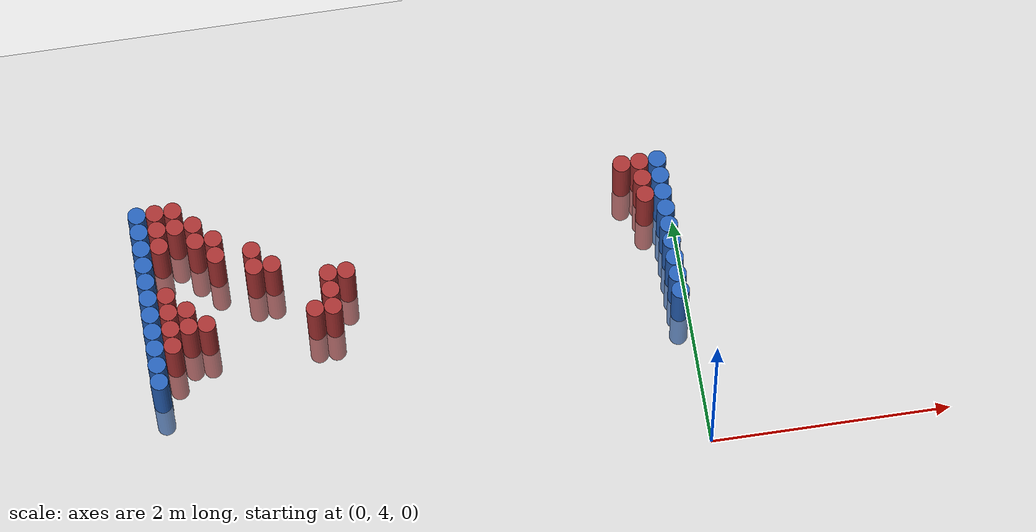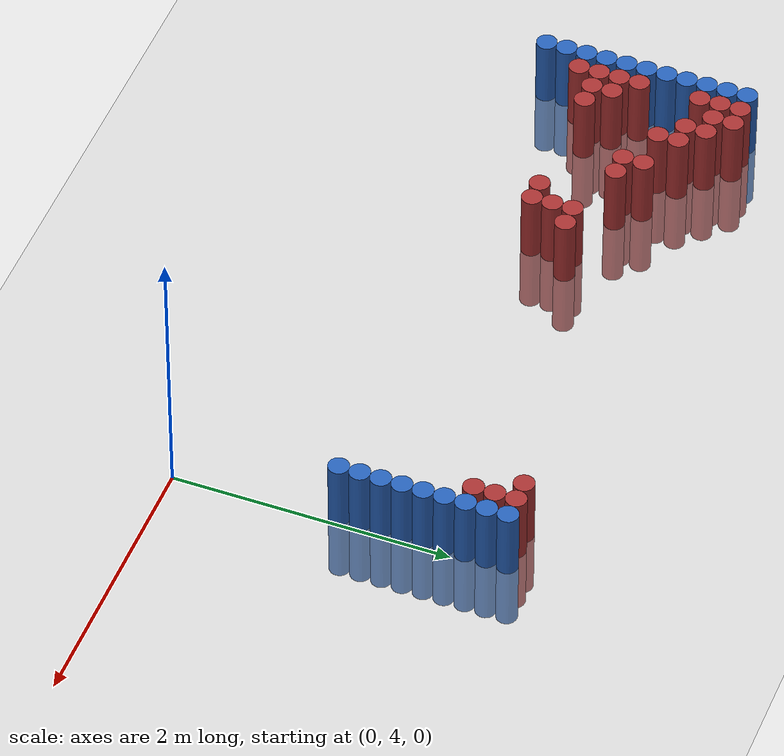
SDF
<sdf version="1.6">
 <world name="default">
  <model name="ground_plane">
   <static>1</static>
   <link name="link">
    <collision name="collision">
     <geometry><plane><normal>0 0 1</normal><size>100 100</size></plane></geometry>
     <surface><friction><ode><mu>100</mu><mu2>50</mu2></ode></friction></surface>
    </collision>
    <visual name="visual">
     <cast_shadows>0</cast_shadows>
     <geometry><plane><normal>0 0 1</normal><size>100 100</size></plane></geometry>
     <material>
      <script><uri>file://media/materials/scripts/gazebo.material</uri><name>Gazebo/Grey</name></script>
     </material>
    </visual>
   </link>
  </model>
  <model name="unit_cylinder_95">
   <static>1</static>
   <pose>-4.425000 5.025000 0.000000 0.000000 0.000000 0.000000</pose>
   <link name="link">
    <inertial>
     <mass>1</mass>
     <inertia><ixx>0.145833</ixx><ixy>0</ixy><ixz>0</ixz><iyy>0.145833</iyy><iyz>0</iyz><izz>0.125</izz></inertia>
    </inertial>
    <collision name="collision">
     <geometry><cylinder><radius>0.075000</radius><length>1</length></cylinder></geometry>
    </collision>
    <visual name="visual">
     <geometry><cylinder><radius>0.075000</radius><length>1</length></cylinder></geometry>
     <material>
      <ambient>0.152000 0.379000 0.720000 1</ambient>
      <diffuse>0.152000 0.379000 0.720000 1</diffuse>
     </material>
     <material>
      <script><name>Gazebo/Grey</name><uri>file://media/materials/scripts/gazebo.material</uri></script>
     </material>
    </visual>
   </link>
  </model>
  <model name="unit_cylinder_96">
   <static>1</static>
   <pose>-4.425000 5.175000 0.000000 0.000000 0.000000 0.000000</pose>
   <link name="link">
    <inertial>
     <mass>1</mass>
     <inertia><ixx>0.145833</ixx><ixy>0</ixy><ixz>0</ixz><iyy>0.145833</iyy><iyz>0</iyz><izz>0.125</izz></inertia>
    </inertial>
    <collision name="collision">
     <geometry><cylinder><radius>0.075000</radius><length>1</length></cylinder></geometry>
    </collision>
    <visual name="visual">
     <geometry><cylinder><radius>0.075000</radius><length>1</length></cylinder></geometry>
     <material>
      <ambient>0.152000 0.379000 0.720000 1</ambient>
      <diffuse>0.152000 0.379000 0.720000 1</diffuse>
     </material>
     <material>
      <script><name>Gazebo/Grey</name><uri>file://media/materials/scripts/gazebo.material</uri></script>
     </material>
    </visual>
   </link>
  </model>
  <model name="unit_cylinder_97">
   <static>1</static>
   <pose>-4.425000 5.325000 0.000000 0.000000 0.000000 0.000000</pose>
   <link name="link">
    <inertial>
     <mass>1</mass>
     <inertia><ixx>0.145833</ixx><ixy>0</ixy><ixz>0</ixz><iyy>0.145833</iyy><iyz>0</iyz><izz>0.125</izz></inertia>
    </inertial>
    <collision name="collision">
     <geometry><cylinder><radius>0.075000</radius><length>1</length></cylinder></geometry>
    </collision>
    <visual name="visual">
     <geometry><cylinder><radius>0.075000</radius><length>1</length></cylinder></geometry>
     <material>
      <ambient>0.152000 0.379000 0.720000 1</ambient>
      <diffuse>0.152000 0.379000 0.720000 1</diffuse>
     </material>
     <material>
      <script><name>Gazebo/Grey</name><uri>file://media/materials/scripts/gazebo.material</uri></script>
     </material>
    </visual>
   </link>
  </model>
  <model name="unit_cylinder_98">
   <static>1</static>
   <pose>-4.425000 5.475000 0.000000 0.000000 0.000000 0.000000</pose>
   <link name="link">
    <inertial>
     <mass>1</mass>
     <inertia><ixx>0.145833</ixx><ixy>0</ixy><ixz>0</ixz><iyy>0.145833</iyy><iyz>0</iyz><izz>0.125</izz></inertia>
    </inertial>
    <collision name="collision">
     <geometry><cylinder><radius>0.075000</radius><length>1</length></cylinder></geometry>
    </collision>
    <visual name="visual">
     <geometry><cylinder><radius>0.075000</radius><length>1</length></cylinder></geometry>
     <material>
      <ambient>0.152000 0.379000 0.720000 1</ambient>
      <diffuse>0.152000 0.379000 0.720000 1</diffuse>
     </material>
     <material>
      <script><name>Gazebo/Grey</name><uri>file://media/materials/scripts/gazebo.material</uri></script>
     </material>
    </visual>
   </link>
  </model>
  <model name="unit_cylinder_99">
   <static>1</static>
   <pose>-4.425000 5.625000 0.000000 0.000000 0.000000 0.000000</pose>
   <link name="link">
    <inertial>
     <mass>1</mass>
     <inertia><ixx>0.145833</ixx><ixy>0</ixy><ixz>0</ixz><iyy>0.145833</iyy><iyz>0</iyz><izz>0.125</izz></inertia>
    </inertial>
    <collision name="collision">
     <geometry><cylinder><radius>0.075000</radius><length>1</length></cylinder></geometry>
    </collision>
    <visual name="visual">
     <geometry><cylinder><radius>0.075000</radius><length>1</length></cylinder></geometry>
     <material>
      <ambient>0.152000 0.379000 0.720000 1</ambient>
      <diffuse>0.152000 0.379000 0.720000 1</diffuse>
     </material>
     <material>
      <script><name>Gazebo/Grey</name><uri>file://media/materials/scripts/gazebo.material</uri></script>
     </material>
    </visual>
   </link>
  </model>
  <model name="unit_cylinder_100">
   <static>1</static>
   <pose>-4.425000 5.775000 0.000000 0.000000 0.000000 0.000000</pose>
   <link name="link">
    <inertial>
     <mass>1</mass>
     <inertia><ixx>0.145833</ixx><ixy>0</ixy><ixz>0</ixz><iyy>0.145833</iyy><iyz>0</iyz><izz>0.125</izz></inertia>
    </inertial>
    <collision name="collision">
     <geometry><cylinder><radius>0.075000</radius><length>1</length></cylinder></geometry>
    </collision>
    <visual name="visual">
     <geometry><cylinder><radius>0.075000</radius><length>1</length></cylinder></geometry>
     <material>
      <ambient>0.152000 0.379000 0.720000 1</ambient>
      <diffuse>0.152000 0.379000 0.720000 1</diffuse>
     </material>
     <material>
      <script><name>Gazebo/Grey</name><uri>file://media/materials/scripts/gazebo.material</uri></script>
     </material>
    </visual>
   </link>
  </model>
  <model name="unit_cylinder_101">
   <static>1</static>
   <pose>-4.425000 5.925000 0.000000 0.000000 0.000000 0.000000</pose>
   <link name="link">
    <inertial>
     <mass>1</mass>
     <inertia><ixx>0.145833</ixx><ixy>0</ixy><ixz>0</ixz><iyy>0.145833</iyy><iyz>0</iyz><izz>0.125</izz></inertia>
    </inertial>
    <collision name="collision">
     <geometry><cylinder><radius>0.075000</radius><length>1</length></cylinder></geometry>
    </collision>
    <visual name="visual">
     <geometry><cylinder><radius>0.075000</radius><length>1</length></cylinder></geometry>
     <material>
      <ambient>0.152000 0.379000 0.720000 1</ambient>
      <diffuse>0.152000 0.379000 0.720000 1</diffuse>
     </material>
     <material>
      <script><name>Gazebo/Grey</name><uri>file://media/materials/scripts/gazebo.material</uri></script>
     </material>
    </visual>
   </link>
  </model>
  <model name="unit_cylinder_102">
   <static>1</static>
   <pose>-4.425000 6.075000 0.000000 0.000000 0.000000 0.000000</pose>
   <link name="link">
    <inertial>
     <mass>1</mass>
     <inertia><ixx>0.145833</ixx><ixy>0</ixy><ixz>0</ixz><iyy>0.145833</iyy><iyz>0</iyz><izz>0.125</izz></inertia>
    </inertial>
    <collision name="collision">
     <geometry><cylinder><radius>0.075000</radius><length>1</length></cylinder></geometry>
    </collision>
    <visual name="visual">
     <geometry><cylinder><radius>0.075000</radius><length>1</length></cylinder></geometry>
     <material>
      <ambient>0.152000 0.379000 0.720000 1</ambient>
      <diffuse>0.152000 0.379000 0.720000 1</diffuse>
     </material>
     <material>
      <script><name>Gazebo/Grey</name><uri>file://media/materials/scripts/gazebo.material</uri></script>
     </material>
    </visual>
   </link>
  </model>
  <model name="unit_cylinder_103">
   <static>1</static>
   <pose>-4.425000 6.225000 0.000000 0.000000 0.000000 0.000000</pose>
   <link name="link">
    <inertial>
     <mass>1</mass>
     <inertia><ixx>0.145833</ixx><ixy>0</ixy><ixz>0</ixz><iyy>0.145833</iyy><iyz>0</iyz><izz>0.125</izz></inertia>
    </inertial>
    <collision name="collision">
     <geometry><cylinder><radius>0.075000</radius><length>1</length></cylinder></geometry>
    </collision>
    <visual name="visual">
     <geometry><cylinder><radius>0.075000</radius><length>1</length></cylinder></geometry>
     <material>
      <ambient>0.152000 0.379000 0.720000 1</ambient>
      <diffuse>0.152000 0.379000 0.720000 1</diffuse>
     </material>
     <material>
      <script><name>Gazebo/Grey</name><uri>file://media/materials/scripts/gazebo.material</uri></script>
     </material>
    </visual>
   </link>
  </model>
  <model name="unit_cylinder_104">
   <static>1</static>
   <pose>-4.425000 6.375000 0.000000 0.000000 0.000000 0.000000</pose>
   <link name="link">
    <inertial>
     <mass>1</mass>
     <inertia><ixx>0.145833</ixx><ixy>0</ixy><ixz>0</ixz><iyy>0.145833</iyy><iyz>0</iyz><izz>0.125</izz></inertia>
    </inertial>
    <collision name="collision">
     <geometry><cylinder><radius>0.075000</radius><length>1</length></cylinder></geometry>
    </collision>
    <visual name="visual">
     <geometry><cylinder><radius>0.075000</radius><length>1</length></cylinder></geometry>
     <material>
      <ambient>0.152000 0.379000 0.720000 1</ambient>
      <diffuse>0.152000 0.379000 0.720000 1</diffuse>
     </material>
     <material>
      <script><name>Gazebo/Grey</name><uri>file://media/materials/scripts/gazebo.material</uri></script>
     </material>
    </visual>
   </link>
  </model>
  <model name="unit_cylinder_105">
   <static>1</static>
   <pose>-4.425000 6.525000 0.000000 0.000000 0.000000 0.000000</pose>
   <link name="link">
    <inertial>
     <mass>1</mass>
     <inertia><ixx>0.145833</ixx><ixy>0</ixy><ixz>0</ixz><iyy>0.145833</iyy><iyz>0</iyz><izz>0.125</izz></inertia>
    </inertial>
    <collision name="collision">
     <geometry><cylinder><radius>0.075000</radius><length>1</length></cylinder></geometry>
    </collision>
    <visual name="visual">
     <geometry><cylinder><radius>0.075000</radius><length>1</length></cylinder></geometry>
     <material>
      <ambient>0.152000 0.379000 0.720000 1</ambient>
      <diffuse>0.152000 0.379000 0.720000 1</diffuse>
     </material>
     <material>
      <script><name>Gazebo/Grey</name><uri>file://media/materials/scripts/gazebo.material</uri></script>
     </material>
    </visual>
   </link>
  </model>
  <model name="unit_cylinder_126">
   <static>1</static>
   <pose>-4.275000 5.325000 0.000000 0.000000 0.000000 0.000000</pose>
   <link name="link">
    <inertial>
     <mass>1</mass>
     <inertia><ixx>0.145833</ixx><ixy>0</ixy><ixz>0</ixz><iyy>0.145833</iyy><iyz>0</iyz><izz>0.125</izz></inertia>
    </inertial>
    <collision name="collision">
     <geometry><cylinder><radius>0.075000</radius><length>1</length></cylinder></geometry>
    </collision>
    <visual name="visual">
     <geometry><cylinder><radius>0.075000</radius><length>1</length></cylinder></geometry>
     <material>
      <ambient>0.648000 0.192000 0.192000 1</ambient>
      <diffuse>0.648000 0.192000 0.192000 1</diffuse>
     </material>
     <material>
      <script><name>Gazebo/Grey</name><uri>file://media/materials/scripts/gazebo.material</uri></script>
     </material>
    </visual>
   </link>
  </model>
  <model name="unit_cylinder_127">
   <static>1</static>
   <pose>-4.275000 5.475000 0.000000 0.000000 0.000000 0.000000</pose>
   <link name="link">
    <inertial>
     <mass>1</mass>
     <inertia><ixx>0.145833</ixx><ixy>0</ixy><ixz>0</ixz><iyy>0.145833</iyy><iyz>0</iyz><izz>0.125</izz></inertia>
    </inertial>
    <collision name="collision">
     <geometry><cylinder><radius>0.075000</radius><length>1</length></cylinder></geometry>
    </collision>
    <visual name="visual">
     <geometry><cylinder><radius>0.075000</radius><length>1</length></cylinder></geometry>
     <material>
      <ambient>0.648000 0.192000 0.192000 1</ambient>
      <diffuse>0.648000 0.192000 0.192000 1</diffuse>
     </material>
     <material>
      <script><name>Gazebo/Grey</name><uri>file://media/materials/scripts/gazebo.material</uri></script>
     </material>
    </visual>
   </link>
  </model>
  <model name="unit_cylinder_128">
   <static>1</static>
   <pose>-4.275000 5.625000 0.000000 0.000000 0.000000 0.000000</pose>
   <link name="link">
    <inertial>
     <mass>1</mass>
     <inertia><ixx>0.145833</ixx><ixy>0</ixy><ixz>0</ixz><iyy>0.145833</iyy><iyz>0</iyz><izz>0.125</izz></inertia>
    </inertial>
    <collision name="collision">
     <geometry><cylinder><radius>0.075000</radius><length>1</length></cylinder></geometry>
    </collision>
    <visual name="visual">
     <geometry><cylinder><radius>0.075000</radius><length>1</length></cylinder></geometry>
     <material>
      <ambient>0.648000 0.192000 0.192000 1</ambient>
      <diffuse>0.648000 0.192000 0.192000 1</diffuse>
     </material>
     <material>
      <script><name>Gazebo/Grey</name><uri>file://media/materials/scripts/gazebo.material</uri></script>
     </material>
    </visual>
   </link>
  </model>
  <model name="unit_cylinder_129">
   <static>1</static>
   <pose>-4.275000 5.775000 0.000000 0.000000 0.000000 0.000000</pose>
   <link name="link">
    <inertial>
     <mass>1</mass>
     <inertia><ixx>0.145833</ixx><ixy>0</ixy><ixz>0</ixz><iyy>0.145833</iyy><iyz>0</iyz><izz>0.125</izz></inertia>
    </inertial>
    <collision name="collision">
     <geometry><cylinder><radius>0.075000</radius><length>1</length></cylinder></geometry>
    </collision>
    <visual name="visual">
     <geometry><cylinder><radius>0.075000</radius><length>1</length></cylinder></geometry>
     <material>
      <ambient>0.648000 0.192000 0.192000 1</ambient>
      <diffuse>0.648000 0.192000 0.192000 1</diffuse>
     </material>
     <material>
      <script><name>Gazebo/Grey</name><uri>file://media/materials/scripts/gazebo.material</uri></script>
     </material>
    </visual>
   </link>
  </model>
  <model name="unit_cylinder_130">
   <static>1</static>
   <pose>-4.275000 6.225000 0.000000 0.000000 0.000000 0.000000</pose>
   <link name="link">
    <inertial>
     <mass>1</mass>
     <inertia><ixx>0.145833</ixx><ixy>0</ixy><ixz>0</ixz><iyy>0.145833</iyy><iyz>0</iyz><izz>0.125</izz></inertia>
    </inertial>
    <collision name="collision">
     <geometry><cylinder><radius>0.075000</radius><length>1</length></cylinder></geometry>
    </collision>
    <visual name="visual">
     <geometry><cylinder><radius>0.075000</radius><length>1</length></cylinder></geometry>
     <material>
      <ambient>0.648000 0.192000 0.192000 1</ambient>
      <diffuse>0.648000 0.192000 0.192000 1</diffuse>
     </material>
     <material>
      <script><name>Gazebo/Grey</name><uri>file://media/materials/scripts/gazebo.material</uri></script>
     </material>
    </visual>
   </link>
  </model>
  <model name="unit_cylinder_131">
   <static>1</static>
   <pose>-4.275000 6.375000 0.000000 0.000000 0.000000 0.000000</pose>
   <link name="link">
    <inertial>
     <mass>1</mass>
     <inertia><ixx>0.145833</ixx><ixy>0</ixy><ixz>0</ixz><iyy>0.145833</iyy><iyz>0</iyz><izz>0.125</izz></inertia>
    </inertial>
    <collision name="collision">
     <geometry><cylinder><radius>0.075000</radius><length>1</length></cylinder></geometry>
    </collision>
    <visual name="visual">
     <geometry><cylinder><radius>0.075000</radius><length>1</length></cylinder></geometry>
     <material>
      <ambient>0.648000 0.192000 0.192000 1</ambient>
      <diffuse>0.648000 0.192000 0.192000 1</diffuse>
     </material>
     <material>
      <script><name>Gazebo/Grey</name><uri>file://media/materials/scripts/gazebo.material</uri></script>
     </material>
    </visual>
   </link>
  </model>
  <model name="unit_cylinder_132">
   <static>1</static>
   <pose>-4.275000 6.525000 0.000000 0.000000 0.000000 0.000000</pose>
   <link name="link">
    <inertial>
     <mass>1</mass>
     <inertia><ixx>0.145833</ixx><ixy>0</ixy><ixz>0</ixz><iyy>0.145833</iyy><iyz>0</iyz><izz>0.125</izz></inertia>
    </inertial>
    <collision name="collision">
     <geometry><cylinder><radius>0.075000</radius><length>1</length></cylinder></geometry>
    </collision>
    <visual name="visual">
     <geometry><cylinder><radius>0.075000</radius><length>1</length></cylinder></geometry>
     <material>
      <ambient>0.648000 0.192000 0.192000 1</ambient>
      <diffuse>0.648000 0.192000 0.192000 1</diffuse>
     </material>
     <material>
      <script><name>Gazebo/Grey</name><uri>file://media/materials/scripts/gazebo.material</uri></script>
     </material>
    </visual>
   </link>
  </model>
  <model name="unit_cylinder_143">
   <static>1</static>
   <pose>-4.125000 5.475000 0.000000 0.000000 0.000000 0.000000</pose>
   <link name="link">
    <inertial>
     <mass>1</mass>
     <inertia><ixx>0.145833</ixx><ixy>0</ixy><ixz>0</ixz><iyy>0.145833</iyy><iyz>0</iyz><izz>0.125</izz></inertia>
    </inertial>
    <collision name="collision">
     <geometry><cylinder><radius>0.075000</radius><length>1</length></cylinder></geometry>
    </collision>
    <visual name="visual">
     <geometry><cylinder><radius>0.075000</radius><length>1</length></cylinder></geometry>
     <material>
      <ambient>0.648000 0.192000 0.192000 1</ambient>
      <diffuse>0.648000 0.192000 0.192000 1</diffuse>
     </material>
     <material>
      <script><name>Gazebo/Grey</name><uri>file://media/materials/scripts/gazebo.material</uri></script>
     </material>
    </visual>
   </link>
  </model>
  <model name="unit_cylinder_144">
   <static>1</static>
   <pose>-4.125000 5.625000 0.000000 0.000000 0.000000 0.000000</pose>
   <link name="link">
    <inertial>
     <mass>1</mass>
     <inertia><ixx>0.145833</ixx><ixy>0</ixy><ixz>0</ixz><iyy>0.145833</iyy><iyz>0</iyz><izz>0.125</izz></inertia>
    </inertial>
    <collision name="collision">
     <geometry><cylinder><radius>0.075000</radius><length>1</length></cylinder></geometry>
    </collision>
    <visual name="visual">
     <geometry><cylinder><radius>0.075000</radius><length>1</length></cylinder></geometry>
     <material>
      <ambient>0.648000 0.192000 0.192000 1</ambient>
      <diffuse>0.648000 0.192000 0.192000 1</diffuse>
     </material>
     <material>
      <script><name>Gazebo/Grey</name><uri>file://media/materials/scripts/gazebo.material</uri></script>
     </material>
    </visual>
   </link>
  </model>
  <model name="unit_cylinder_145">
   <static>1</static>
   <pose>-4.125000 6.375000 0.000000 0.000000 0.000000 0.000000</pose>
   <link name="link">
    <inertial>
     <mass>1</mass>
     <inertia><ixx>0.145833</ixx><ixy>0</ixy><ixz>0</ixz><iyy>0.145833</iyy><iyz>0</iyz><izz>0.125</izz></inertia>
    </inertial>
    <collision name="collision">
     <geometry><cylinder><radius>0.075000</radius><length>1</length></cylinder></geometry>
    </collision>
    <visual name="visual">
     <geometry><cylinder><radius>0.075000</radius><length>1</length></cylinder></geometry>
     <material>
      <ambient>0.648000 0.192000 0.192000 1</ambient>
      <diffuse>0.648000 0.192000 0.192000 1</diffuse>
     </material>
     <material>
      <script><name>Gazebo/Grey</name><uri>file://media/materials/scripts/gazebo.material</uri></script>
     </material>
    </visual>
   </link>
  </model>
  <model name="unit_cylinder_146">
   <static>1</static>
   <pose>-4.125000 6.525000 0.000000 0.000000 0.000000 0.000000</pose>
   <link name="link">
    <inertial>
     <mass>1</mass>
     <inertia><ixx>0.145833</ixx><ixy>0</ixy><ixz>0</ixz><iyy>0.145833</iyy><iyz>0</iyz><izz>0.125</izz></inertia>
    </inertial>
    <collision name="collision">
     <geometry><cylinder><radius>0.075000</radius><length>1</length></cylinder></geometry>
    </collision>
    <visual name="visual">
     <geometry><cylinder><radius>0.075000</radius><length>1</length></cylinder></geometry>
     <material>
      <ambient>0.648000 0.192000 0.192000 1</ambient>
      <diffuse>0.648000 0.192000 0.192000 1</diffuse>
     </material>
     <material>
      <script><name>Gazebo/Grey</name><uri>file://media/materials/scripts/gazebo.material</uri></script>
     </material>
    </visual>
   </link>
  </model>
  <model name="unit_cylinder_153">
   <static>1</static>
   <pose>-3.975000 5.475000 0.000000 0.000000 0.000000 0.000000</pose>
   <link name="link">
    <inertial>
     <mass>1</mass>
     <inertia><ixx>0.145833</ixx><ixy>0</ixy><ixz>0</ixz><iyy>0.145833</iyy><iyz>0</iyz><izz>0.125</izz></inertia>
    </inertial>
    <collision name="collision">
     <geometry><cylinder><radius>0.075000</radius><length>1</length></cylinder></geometry>
    </collision>
    <visual name="visual">
     <geometry><cylinder><radius>0.075000</radius><length>1</length></cylinder></geometry>
     <material>
      <ambient>0.648000 0.192000 0.192000 1</ambient>
      <diffuse>0.648000 0.192000 0.192000 1</diffuse>
     </material>
     <material>
      <script><name>Gazebo/Grey</name><uri>file://media/materials/scripts/gazebo.material</uri></script>
     </material>
    </visual>
   </link>
  </model>
  <model name="unit_cylinder_154">
   <static>1</static>
   <pose>-3.975000 6.225000 0.000000 0.000000 0.000000 0.000000</pose>
   <link name="link">
    <inertial>
     <mass>1</mass>
     <inertia><ixx>0.145833</ixx><ixy>0</ixy><ixz>0</ixz><iyy>0.145833</iyy><iyz>0</iyz><izz>0.125</izz></inertia>
    </inertial>
    <collision name="collision">
     <geometry><cylinder><radius>0.075000</radius><length>1</length></cylinder></geometry>
    </collision>
    <visual name="visual">
     <geometry><cylinder><radius>0.075000</radius><length>1</length></cylinder></geometry>
     <material>
      <ambient>0.648000 0.192000 0.192000 1</ambient>
      <diffuse>0.648000 0.192000 0.192000 1</diffuse>
     </material>
     <material>
      <script><name>Gazebo/Grey</name><uri>file://media/materials/scripts/gazebo.material</uri></script>
     </material>
    </visual>
   </link>
  </model>
  <model name="unit_cylinder_155">
   <static>1</static>
   <pose>-3.975000 6.375000 0.000000 0.000000 0.000000 0.000000</pose>
   <link name="link">
    <inertial>
     <mass>1</mass>
     <inertia><ixx>0.145833</ixx><ixy>0</ixy><ixz>0</ixz><iyy>0.145833</iyy><iyz>0</iyz><izz>0.125</izz></inertia>
    </inertial>
    <collision name="collision">
     <geometry><cylinder><radius>0.075000</radius><length>1</length></cylinder></geometry>
    </collision>
    <visual name="visual">
     <geometry><cylinder><radius>0.075000</radius><length>1</length></cylinder></geometry>
     <material>
      <ambient>0.648000 0.192000 0.192000 1</ambient>
      <diffuse>0.648000 0.192000 0.192000 1</diffuse>
     </material>
     <material>
      <script><name>Gazebo/Grey</name><uri>file://media/materials/scripts/gazebo.material</uri></script>
     </material>
    </visual>
   </link>
  </model>
  <model name="unit_cylinder_159">
   <static>1</static>
   <pose>-3.825000 6.075000 0.000000 0.000000 0.000000 0.000000</pose>
   <link name="link">
    <inertial>
     <mass>1</mass>
     <inertia><ixx>0.145833</ixx><ixy>0</ixy><ixz>0</ixz><iyy>0.145833</iyy><iyz>0</iyz><izz>0.125</izz></inertia>
    </inertial>
    <collision name="collision">
     <geometry><cylinder><radius>0.075000</radius><length>1</length></cylinder></geometry>
    </collision>
    <visual name="visual">
     <geometry><cylinder><radius>0.075000</radius><length>1</length></cylinder></geometry>
     <material>
      <ambient>0.648000 0.192000 0.192000 1</ambient>
      <diffuse>0.648000 0.192000 0.192000 1</diffuse>
     </material>
     <material>
      <script><name>Gazebo/Grey</name><uri>file://media/materials/scripts/gazebo.material</uri></script>
     </material>
    </visual>
   </link>
  </model>
  <model name="unit_cylinder_160">
   <static>1</static>
   <pose>-3.825000 6.225000 0.000000 0.000000 0.000000 0.000000</pose>
   <link name="link">
    <inertial>
     <mass>1</mass>
     <inertia><ixx>0.145833</ixx><ixy>0</ixy><ixz>0</ixz><iyy>0.145833</iyy><iyz>0</iyz><izz>0.125</izz></inertia>
    </inertial>
    <collision name="collision">
     <geometry><cylinder><radius>0.075000</radius><length>1</length></cylinder></geometry>
    </collision>
    <visual name="visual">
     <geometry><cylinder><radius>0.075000</radius><length>1</length></cylinder></geometry>
     <material>
      <ambient>0.648000 0.192000 0.192000 1</ambient>
      <diffuse>0.648000 0.192000 0.192000 1</diffuse>
     </material>
     <material>
      <script><name>Gazebo/Grey</name><uri>file://media/materials/scripts/gazebo.material</uri></script>
     </material>
    </visual>
   </link>
  </model>
  <model name="unit_cylinder_165">
   <static>1</static>
   <pose>-3.525000 5.925000 0.000000 0.000000 0.000000 0.000000</pose>
   <link name="link">
    <inertial>
     <mass>1</mass>
     <inertia><ixx>0.145833</ixx><ixy>0</ixy><ixz>0</ixz><iyy>0.145833</iyy><iyz>0</iyz><izz>0.125</izz></inertia>
    </inertial>
    <collision name="collision">
     <geometry><cylinder><radius>0.075000</radius><length>1</length></cylinder></geometry>
    </collision>
    <visual name="visual">
     <geometry><cylinder><radius>0.075000</radius><length>1</length></cylinder></geometry>
     <material>
      <ambient>0.648000 0.192000 0.192000 1</ambient>
      <diffuse>0.648000 0.192000 0.192000 1</diffuse>
     </material>
     <material>
      <script><name>Gazebo/Grey</name><uri>file://media/materials/scripts/gazebo.material</uri></script>
     </material>
    </visual>
   </link>
  </model>
  <model name="unit_cylinder_166">
   <static>1</static>
   <pose>-3.525000 6.075000 0.000000 0.000000 0.000000 0.000000</pose>
   <link name="link">
    <inertial>
     <mass>1</mass>
     <inertia><ixx>0.145833</ixx><ixy>0</ixy><ixz>0</ixz><iyy>0.145833</iyy><iyz>0</iyz><izz>0.125</izz></inertia>
    </inertial>
    <collision name="collision">
     <geometry><cylinder><radius>0.075000</radius><length>1</length></cylinder></geometry>
    </collision>
    <visual name="visual">
     <geometry><cylinder><radius>0.075000</radius><length>1</length></cylinder></geometry>
     <material>
      <ambient>0.648000 0.192000 0.192000 1</ambient>
      <diffuse>0.648000 0.192000 0.192000 1</diffuse>
     </material>
     <material>
      <script><name>Gazebo/Grey</name><uri>file://media/materials/scripts/gazebo.material</uri></script>
     </material>
    </visual>
   </link>
  </model>
  <model name="unit_cylinder_169">
   <static>1</static>
   <pose>-3.375000 5.925000 0.000000 0.000000 0.000000 0.000000</pose>
   <link name="link">
    <inertial>
     <mass>1</mass>
     <inertia><ixx>0.145833</ixx><ixy>0</ixy><ixz>0</ixz><iyy>0.145833</iyy><iyz>0</iyz><izz>0.125</izz></inertia>
    </inertial>
    <collision name="collision">
     <geometry><cylinder><radius>0.075000</radius><length>1</length></cylinder></geometry>
    </collision>
    <visual name="visual">
     <geometry><cylinder><radius>0.075000</radius><length>1</length></cylinder></geometry>
     <material>
      <ambient>0.648000 0.192000 0.192000 1</ambient>
      <diffuse>0.648000 0.192000 0.192000 1</diffuse>
     </material>
     <material>
      <script><name>Gazebo/Grey</name><uri>file://media/materials/scripts/gazebo.material</uri></script>
     </material>
    </visual>
   </link>
  </model>
  <model name="unit_cylinder_170">
   <static>1</static>
   <pose>-3.075000 5.475000 0.000000 0.000000 0.000000 0.000000</pose>
   <link name="link">
    <inertial>
     <mass>1</mass>
     <inertia><ixx>0.145833</ixx><ixy>0</ixy><ixz>0</ixz><iyy>0.145833</iyy><iyz>0</iyz><izz>0.125</izz></inertia>
    </inertial>
    <collision name="collision">
     <geometry><cylinder><radius>0.075000</radius><length>1</length></cylinder></geometry>
    </collision>
    <visual name="visual">
     <geometry><cylinder><radius>0.075000</radius><length>1</length></cylinder></geometry>
     <material>
      <ambient>0.648000 0.192000 0.192000 1</ambient>
      <diffuse>0.648000 0.192000 0.192000 1</diffuse>
     </material>
     <material>
      <script><name>Gazebo/Grey</name><uri>file://media/materials/scripts/gazebo.material</uri></script>
     </material>
    </visual>
   </link>
  </model>
  <model name="unit_cylinder_171">
   <static>1</static>
   <pose>-2.925000 5.475000 0.000000 0.000000 0.000000 0.000000</pose>
   <link name="link">
    <inertial>
     <mass>1</mass>
     <inertia><ixx>0.145833</ixx><ixy>0</ixy><ixz>0</ixz><iyy>0.145833</iyy><iyz>0</iyz><izz>0.125</izz></inertia>
    </inertial>
    <collision name="collision">
     <geometry><cylinder><radius>0.075000</radius><length>1</length></cylinder></geometry>
    </collision>
    <visual name="visual">
     <geometry><cylinder><radius>0.075000</radius><length>1</length></cylinder></geometry>
     <material>
      <ambient>0.648000 0.192000 0.192000 1</ambient>
      <diffuse>0.648000 0.192000 0.192000 1</diffuse>
     </material>
     <material>
      <script><name>Gazebo/Grey</name><uri>file://media/materials/scripts/gazebo.material</uri></script>
     </material>
    </visual>
   </link>
  </model>
  <model name="unit_cylinder_172">
   <static>1</static>
   <pose>-2.925000 5.625000 0.000000 0.000000 0.000000 0.000000</pose>
   <link name="link">
    <inertial>
     <mass>1</mass>
     <inertia><ixx>0.145833</ixx><ixy>0</ixy><ixz>0</ixz><iyy>0.145833</iyy><iyz>0</iyz><izz>0.125</izz></inertia>
    </inertial>
    <collision name="collision">
     <geometry><cylinder><radius>0.075000</radius><length>1</length></cylinder></geometry>
    </collision>
    <visual name="visual">
     <geometry><cylinder><radius>0.075000</radius><length>1</length></cylinder></geometry>
     <material>
      <ambient>0.648000 0.192000 0.192000 1</ambient>
      <diffuse>0.648000 0.192000 0.192000 1</diffuse>
     </material>
     <material>
      <script><name>Gazebo/Grey</name><uri>file://media/materials/scripts/gazebo.material</uri></script>
     </material>
    </visual>
   </link>
  </model>
  <model name="unit_cylinder_173">
   <static>1</static>
   <pose>-2.925000 5.775000 0.000000 0.000000 0.000000 0.000000</pose>
   <link name="link">
    <inertial>
     <mass>1</mass>
     <inertia><ixx>0.145833</ixx><ixy>0</ixy><ixz>0</ixz><iyy>0.145833</iyy><iyz>0</iyz><izz>0.125</izz></inertia>
    </inertial>
    <collision name="collision">
     <geometry><cylinder><radius>0.075000</radius><length>1</length></cylinder></geometry>
    </collision>
    <visual name="visual">
     <geometry><cylinder><radius>0.075000</radius><length>1</length></cylinder></geometry>
     <material>
      <ambient>0.648000 0.192000 0.192000 1</ambient>
      <diffuse>0.648000 0.192000 0.192000 1</diffuse>
     </material>
     <material>
      <script><name>Gazebo/Grey</name><uri>file://media/materials/scripts/gazebo.material</uri></script>
     </material>
    </visual>
   </link>
  </model>
  <model name="unit_cylinder_175">
   <static>1</static>
   <pose>-2.775000 5.775000 0.000000 0.000000 0.000000 0.000000</pose>
   <link name="link">
    <inertial>
     <mass>1</mass>
     <inertia><ixx>0.145833</ixx><ixy>0</ixy><ixz>0</ixz><iyy>0.145833</iyy><iyz>0</iyz><izz>0.125</izz></inertia>
    </inertial>
    <collision name="collision">
     <geometry><cylinder><radius>0.075000</radius><length>1</length></cylinder></geometry>
    </collision>
    <visual name="visual">
     <geometry><cylinder><radius>0.075000</radius><length>1</length></cylinder></geometry>
     <material>
      <ambient>0.648000 0.192000 0.192000 1</ambient>
      <diffuse>0.648000 0.192000 0.192000 1</diffuse>
     </material>
     <material>
      <script><name>Gazebo/Grey</name><uri>file://media/materials/scripts/gazebo.material</uri></script>
     </material>
    </visual>
   </link>
  </model>
  <model name="unit_cylinder_195">
   <static>1</static>
   <pose>-0.375000 6.375000 0.000000 0.000000 0.000000 0.000000</pose>
   <link name="link">
    <inertial>
     <mass>1</mass>
     <inertia><ixx>0.145833</ixx><ixy>0</ixy><ixz>0</ixz><iyy>0.145833</iyy><iyz>0</iyz><izz>0.125</izz></inertia>
    </inertial>
    <collision name="collision">
     <geometry><cylinder><radius>0.075000</radius><length>1</length></cylinder></geometry>
    </collision>
    <visual name="visual">
     <geometry><cylinder><radius>0.075000</radius><length>1</length></cylinder></geometry>
     <material>
      <ambient>0.648000 0.192000 0.192000 1</ambient>
      <diffuse>0.648000 0.192000 0.192000 1</diffuse>
     </material>
     <material>
      <script><name>Gazebo/Grey</name><uri>file://media/materials/scripts/gazebo.material</uri></script>
     </material>
    </visual>
   </link>
  </model>
  <model name="unit_cylinder_201">
   <static>1</static>
   <pose>-0.225000 6.075000 0.000000 0.000000 0.000000 0.000000</pose>
   <link name="link">
    <inertial>
     <mass>1</mass>
     <inertia><ixx>0.145833</ixx><ixy>0</ixy><ixz>0</ixz><iyy>0.145833</iyy><iyz>0</iyz><izz>0.125</izz></inertia>
    </inertial>
    <collision name="collision">
     <geometry><cylinder><radius>0.075000</radius><length>1</length></cylinder></geometry>
    </collision>
    <visual name="visual">
     <geometry><cylinder><radius>0.075000</radius><length>1</length></cylinder></geometry>
     <material>
      <ambient>0.648000 0.192000 0.192000 1</ambient>
      <diffuse>0.648000 0.192000 0.192000 1</diffuse>
     </material>
     <material>
      <script><name>Gazebo/Grey</name><uri>file://media/materials/scripts/gazebo.material</uri></script>
     </material>
    </visual>
   </link>
  </model>
  <model name="unit_cylinder_202">
   <static>1</static>
   <pose>-0.225000 6.225000 0.000000 0.000000 0.000000 0.000000</pose>
   <link name="link">
    <inertial>
     <mass>1</mass>
     <inertia><ixx>0.145833</ixx><ixy>0</ixy><ixz>0</ixz><iyy>0.145833</iyy><iyz>0</iyz><izz>0.125</izz></inertia>
    </inertial>
    <collision name="collision">
     <geometry><cylinder><radius>0.075000</radius><length>1</length></cylinder></geometry>
    </collision>
    <visual name="visual">
     <geometry><cylinder><radius>0.075000</radius><length>1</length></cylinder></geometry>
     <material>
      <ambient>0.648000 0.192000 0.192000 1</ambient>
      <diffuse>0.648000 0.192000 0.192000 1</diffuse>
     </material>
     <material>
      <script><name>Gazebo/Grey</name><uri>file://media/materials/scripts/gazebo.material</uri></script>
     </material>
    </visual>
   </link>
  </model>
  <model name="unit_cylinder_203">
   <static>1</static>
   <pose>-0.225000 6.375000 0.000000 0.000000 0.000000 0.000000</pose>
   <link name="link">
    <inertial>
     <mass>1</mass>
     <inertia><ixx>0.145833</ixx><ixy>0</ixy><ixz>0</ixz><iyy>0.145833</iyy><iyz>0</iyz><izz>0.125</izz></inertia>
    </inertial>
    <collision name="collision">
     <geometry><cylinder><radius>0.075000</radius><length>1</length></cylinder></geometry>
    </collision>
    <visual name="visual">
     <geometry><cylinder><radius>0.075000</radius><length>1</length></cylinder></geometry>
     <material>
      <ambient>0.648000 0.192000 0.192000 1</ambient>
      <diffuse>0.648000 0.192000 0.192000 1</diffuse>
     </material>
     <material>
      <script><name>Gazebo/Grey</name><uri>file://media/materials/scripts/gazebo.material</uri></script>
     </material>
    </visual>
   </link>
  </model>
  <model name="unit_cylinder_209">
   <static>1</static>
   <pose>-0.075000 5.175000 0.000000 0.000000 0.000000 0.000000</pose>
   <link name="link">
    <inertial>
     <mass>1</mass>
     <inertia><ixx>0.145833</ixx><ixy>0</ixy><ixz>0</ixz><iyy>0.145833</iyy><iyz>0</iyz><izz>0.125</izz></inertia>
    </inertial>
    <collision name="collision">
     <geometry><cylinder><radius>0.075000</radius><length>1</length></cylinder></geometry>
    </collision>
    <visual name="visual">
     <geometry><cylinder><radius>0.075000</radius><length>1</length></cylinder></geometry>
     <material>
      <ambient>0.152000 0.379000 0.720000 1</ambient>
      <diffuse>0.152000 0.379000 0.720000 1</diffuse>
     </material>
     <material>
      <script><name>Gazebo/Grey</name><uri>file://media/materials/scripts/gazebo.material</uri></script>
     </material>
    </visual>
   </link>
  </model>
  <model name="unit_cylinder_210">
   <static>1</static>
   <pose>-0.075000 5.325000 0.000000 0.000000 0.000000 0.000000</pose>
   <link name="link">
    <inertial>
     <mass>1</mass>
     <inertia><ixx>0.145833</ixx><ixy>0</ixy><ixz>0</ixz><iyy>0.145833</iyy><iyz>0</iyz><izz>0.125</izz></inertia>
    </inertial>
    <collision name="collision">
     <geometry><cylinder><radius>0.075000</radius><length>1</length></cylinder></geometry>
    </collision>
    <visual name="visual">
     <geometry><cylinder><radius>0.075000</radius><length>1</length></cylinder></geometry>
     <material>
      <ambient>0.152000 0.379000 0.720000 1</ambient>
      <diffuse>0.152000 0.379000 0.720000 1</diffuse>
     </material>
     <material>
      <script><name>Gazebo/Grey</name><uri>file://media/materials/scripts/gazebo.material</uri></script>
     </material>
    </visual>
   </link>
  </model>
  <model name="unit_cylinder_211">
   <static>1</static>
   <pose>-0.075000 5.475000 0.000000 0.000000 0.000000 0.000000</pose>
   <link name="link">
    <inertial>
     <mass>1</mass>
     <inertia><ixx>0.145833</ixx><ixy>0</ixy><ixz>0</ixz><iyy>0.145833</iyy><iyz>0</iyz><izz>0.125</izz></inertia>
    </inertial>
    <collision name="collision">
     <geometry><cylinder><radius>0.075000</radius><length>1</length></cylinder></geometry>
    </collision>
    <visual name="visual">
     <geometry><cylinder><radius>0.075000</radius><length>1</length></cylinder></geometry>
     <material>
      <ambient>0.152000 0.379000 0.720000 1</ambient>
      <diffuse>0.152000 0.379000 0.720000 1</diffuse>
     </material>
     <material>
      <script><name>Gazebo/Grey</name><uri>file://media/materials/scripts/gazebo.material</uri></script>
     </material>
    </visual>
   </link>
  </model>
  <model name="unit_cylinder_212">
   <static>1</static>
   <pose>-0.075000 5.625000 0.000000 0.000000 0.000000 0.000000</pose>
   <link name="link">
    <inertial>
     <mass>1</mass>
     <inertia><ixx>0.145833</ixx><ixy>0</ixy><ixz>0</ixz><iyy>0.145833</iyy><iyz>0</iyz><izz>0.125</izz></inertia>
    </inertial>
    <collision name="collision">
     <geometry><cylinder><radius>0.075000</radius><length>1</length></cylinder></geometry>
    </collision>
    <visual name="visual">
     <geometry><cylinder><radius>0.075000</radius><length>1</length></cylinder></geometry>
     <material>
      <ambient>0.152000 0.379000 0.720000 1</ambient>
      <diffuse>0.152000 0.379000 0.720000 1</diffuse>
     </material>
     <material>
      <script><name>Gazebo/Grey</name><uri>file://media/materials/scripts/gazebo.material</uri></script>
     </material>
    </visual>
   </link>
  </model>
  <model name="unit_cylinder_213">
   <static>1</static>
   <pose>-0.075000 5.775000 0.000000 0.000000 0.000000 0.000000</pose>
   <link name="link">
    <inertial>
     <mass>1</mass>
     <inertia><ixx>0.145833</ixx><ixy>0</ixy><ixz>0</ixz><iyy>0.145833</iyy><iyz>0</iyz><izz>0.125</izz></inertia>
    </inertial>
    <collision name="collision">
     <geometry><cylinder><radius>0.075000</radius><length>1</length></cylinder></geometry>
    </collision>
    <visual name="visual">
     <geometry><cylinder><radius>0.075000</radius><length>1</length></cylinder></geometry>
     <material>
      <ambient>0.152000 0.379000 0.720000 1</ambient>
      <diffuse>0.152000 0.379000 0.720000 1</diffuse>
     </material>
     <material>
      <script><name>Gazebo/Grey</name><uri>file://media/materials/scripts/gazebo.material</uri></script>
     </material>
    </visual>
   </link>
  </model>
  <model name="unit_cylinder_214">
   <static>1</static>
   <pose>-0.075000 5.925000 0.000000 0.000000 0.000000 0.000000</pose>
   <link name="link">
    <inertial>
     <mass>1</mass>
     <inertia><ixx>0.145833</ixx><ixy>0</ixy><ixz>0</ixz><iyy>0.145833</iyy><iyz>0</iyz><izz>0.125</izz></inertia>
    </inertial>
    <collision name="collision">
     <geometry><cylinder><radius>0.075000</radius><length>1</length></cylinder></geometry>
    </collision>
    <visual name="visual">
     <geometry><cylinder><radius>0.075000</radius><length>1</length></cylinder></geometry>
     <material>
      <ambient>0.152000 0.379000 0.720000 1</ambient>
      <diffuse>0.152000 0.379000 0.720000 1</diffuse>
     </material>
     <material>
      <script><name>Gazebo/Grey</name><uri>file://media/materials/scripts/gazebo.material</uri></script>
     </material>
    </visual>
   </link>
  </model>
  <model name="unit_cylinder_215">
   <static>1</static>
   <pose>-0.075000 6.075000 0.000000 0.000000 0.000000 0.000000</pose>
   <link name="link">
    <inertial>
     <mass>1</mass>
     <inertia><ixx>0.145833</ixx><ixy>0</ixy><ixz>0</ixz><iyy>0.145833</iyy><iyz>0</iyz><izz>0.125</izz></inertia>
    </inertial>
    <collision name="collision">
     <geometry><cylinder><radius>0.075000</radius><length>1</length></cylinder></geometry>
    </collision>
    <visual name="visual">
     <geometry><cylinder><radius>0.075000</radius><length>1</length></cylinder></geometry>
     <material>
      <ambient>0.152000 0.379000 0.720000 1</ambient>
      <diffuse>0.152000 0.379000 0.720000 1</diffuse>
     </material>
     <material>
      <script><name>Gazebo/Grey</name><uri>file://media/materials/scripts/gazebo.material</uri></script>
     </material>
    </visual>
   </link>
  </model>
  <model name="unit_cylinder_216">
   <static>1</static>
   <pose>-0.075000 6.225000 0.000000 0.000000 0.000000 0.000000</pose>
   <link name="link">
    <inertial>
     <mass>1</mass>
     <inertia><ixx>0.145833</ixx><ixy>0</ixy><ixz>0</ixz><iyy>0.145833</iyy><iyz>0</iyz><izz>0.125</izz></inertia>
    </inertial>
    <collision name="collision">
     <geometry><cylinder><radius>0.075000</radius><length>1</length></cylinder></geometry>
    </collision>
    <visual name="visual">
     <geometry><cylinder><radius>0.075000</radius><length>1</length></cylinder></geometry>
     <material>
      <ambient>0.152000 0.379000 0.720000 1</ambient>
      <diffuse>0.152000 0.379000 0.720000 1</diffuse>
     </material>
     <material>
      <script><name>Gazebo/Grey</name><uri>file://media/materials/scripts/gazebo.material</uri></script>
     </material>
    </visual>
   </link>
  </model>
  <model name="unit_cylinder_217">
   <static>1</static>
   <pose>-0.075000 6.375000 0.000000 0.000000 0.000000 0.000000</pose>
   <link name="link">
    <inertial>
     <mass>1</mass>
     <inertia><ixx>0.145833</ixx><ixy>0</ixy><ixz>0</ixz><iyy>0.145833</iyy><iyz>0</iyz><izz>0.125</izz></inertia>
    </inertial>
    <collision name="collision">
     <geometry><cylinder><radius>0.075000</radius><length>1</length></cylinder></geometry>
    </collision>
    <visual name="visual">
     <geometry><cylinder><radius>0.075000</radius><length>1</length></cylinder></geometry>
     <material>
      <ambient>0.152000 0.379000 0.720000 1</ambient>
      <diffuse>0.152000 0.379000 0.720000 1</diffuse>
     </material>
     <material>
      <script><name>Gazebo/Grey</name><uri>file://media/materials/scripts/gazebo.material</uri></script>
     </material>
    </visual>
   </link>
  </model>
 </world>
</sdf>
